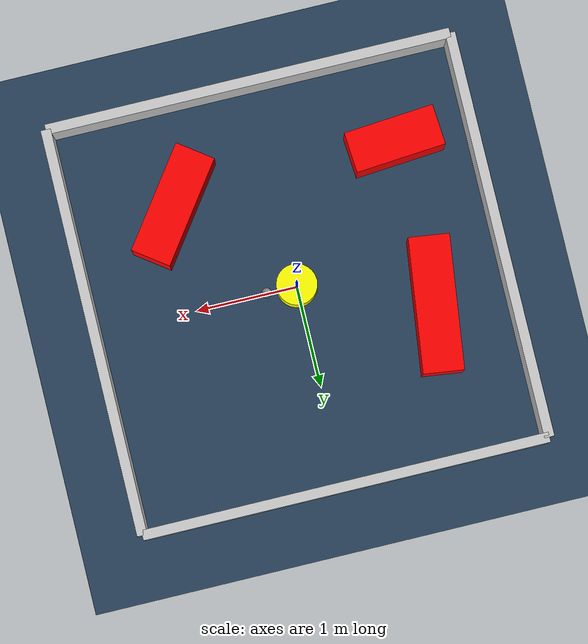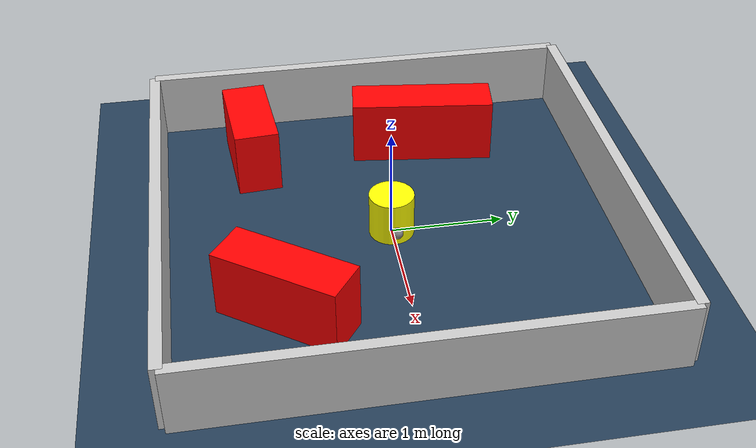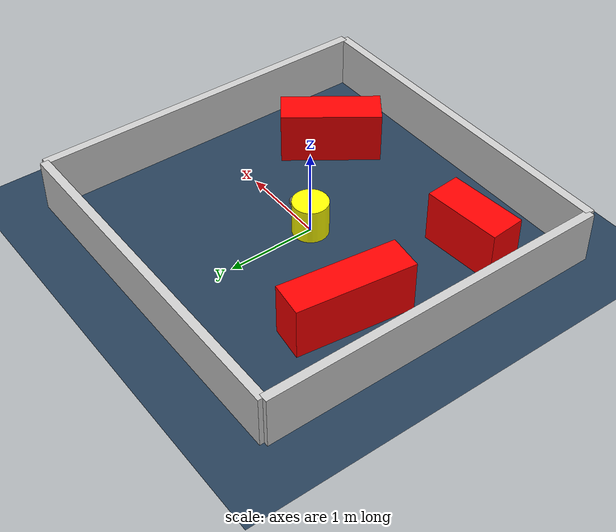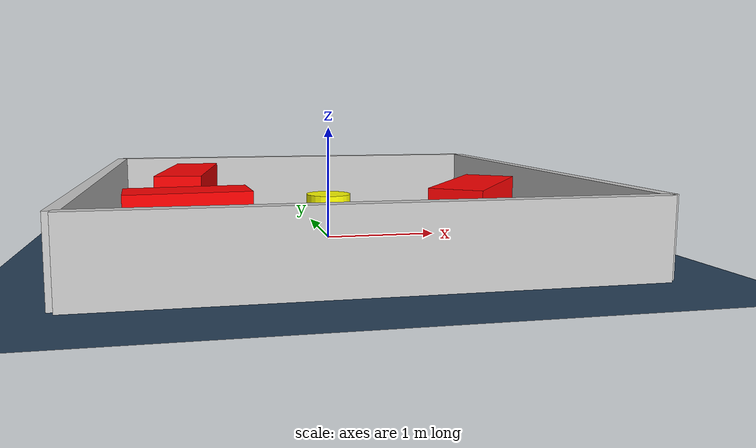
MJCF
<?xml version="1.0" ?>
<mujoco model="generated_environment">
  <option timestep="0.01" integrator="RK4" cone="elliptic"/>
  <default>
    <geom density="1"/>
  </default>
  <asset>
    <texture builtin="gradient" height="3072" rgb1="0.3 0.5 0.7" rgb2="0 0 0" type="skybox" width="512"/>
    <texture builtin="checker" height="300" mark="edge" markrgb="0.8 0.8 0.8" name="groundplane" rgb1="0.2 0.3 0.4" rgb2="0.1 0.2 0.3" type="2d" width="300"/>
    <material name="groundplane" reflectance="0.2" texrepeat="5 5" texture="groundplane" texuniform="true"/>
    <material name="robot" rgba="0.0 1.0 0.0 1"/>
  </asset>
  <worldbody>
    <light dir="0 0 -1" directional="true" pos="0 0 1.5"/>
    <geom condim="4" friction="1.0 0.005 0.001" material="groundplane" name="floor" size="0 0 0.05" type="plane"/>
    <body name="walls">
      <geom name="wall_1" condim="4" pos="-2.0 0.0 0.3" rgba="0.800000011920929 0.800000011920929 0.800000011920929 1.0" size="0.05 2.0 0.3" type="box"/>
      <geom name="wall_2" condim="4" pos="2.0 0.0 0.3" rgba="0.800000011920929 0.800000011920929 0.800000011920929 1.0" size="0.05 2.0 0.3" type="box"/>
      <geom name="wall_3" condim="4" pos="0.0 -2.0 0.3" rgba="0.800000011920929 0.800000011920929 0.800000011920929 1.0" size="2.0 0.05 0.3" type="box"/>
      <geom name="wall_4" condim="4" pos="0.0 2.0 0.3" rgba="0.800000011920929 0.800000011920929 0.800000011920929 1.0" size="2.0 0.05 0.3" type="box"/>
    </body>
    <body name="robot">
      <joint name="joint_x" type="slide" pos="0 0 0" axis="1 0 0"/>
      <joint name="joint_y" type="slide" pos="0 0 0" axis="0 1 0"/>
      <geom name="robot" type="sphere" pos="0.3 0.0 0.2" size="0.05" mass="5." friction="1.0 0.005 0.0001" condim="4" rgba="0.5 0.5 0.5 1.0"/>
      <site name="sensor_ball"/>
    </body>
    <body name="obstacle_movable_1">
      <geom name="obstacle_movable_1" condim="4" pos="0.0 0.0 0.2" euler="0 0 0.0" friction="1.0 0.005 0.001" rgba="1.0 1.0 0.0 1.0" size="0.2 0.2 0.0" type="cylinder" mass="0.1"/>
      <joint type="free"/>
    </body>
    <body name="obstacle_2_static">
      <geom name="obstacle_2_static" condim="4" pos="-1.2526463855802472 0.505549543574136 0.3" euler="0 0 82.62347738088661" friction="1.0 0.005 0.001" rgba="1 0 0 1" size="0.6592893035396933 0.2 0.3" type="box"/>
    </body>
    <body name="obstacle_3_static">
      <geom name="obstacle_3_static" condim="4" pos="0.9784778740477518 -1.0147419298999774 0.3" euler="0 0 234.05224799364964" friction="1.0 0.005 0.001" rgba="1 0 0 1" size="0.5599810930087877 0.2 0.3" type="box"/>
    </body>
    <body name="obstacle_4_static">
      <geom name="obstacle_4_static" condim="4" pos="-1.2419026650235954 -1.1313832128774266 0.3" euler="0 0 4.512378178098979" friction="1.0 0.005 0.001" rgba="1 0 0 1" size="0.44672984425378925 0.2 0.3" type="box"/>
    </body>
  </worldbody>
  <actuator>
    <motor name="actuator_x" joint="joint_x" gear="1" ctrlrange="-1 1"/>
    <motor name="actuator_y" joint="joint_y" gear="1" ctrlrange="-1 1"/>
  </actuator>
</mujoco>
